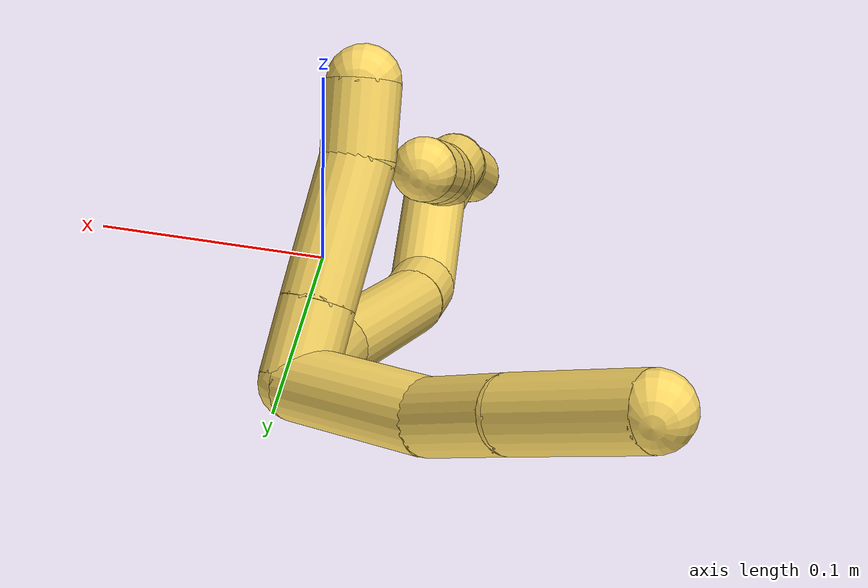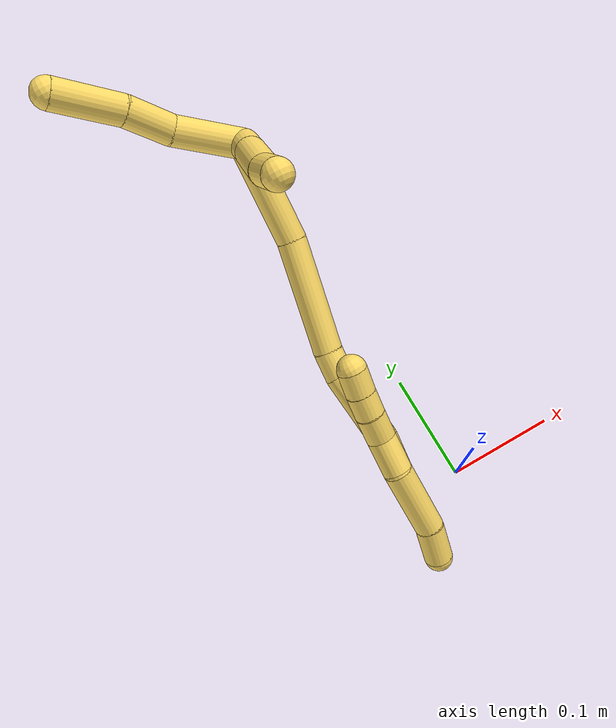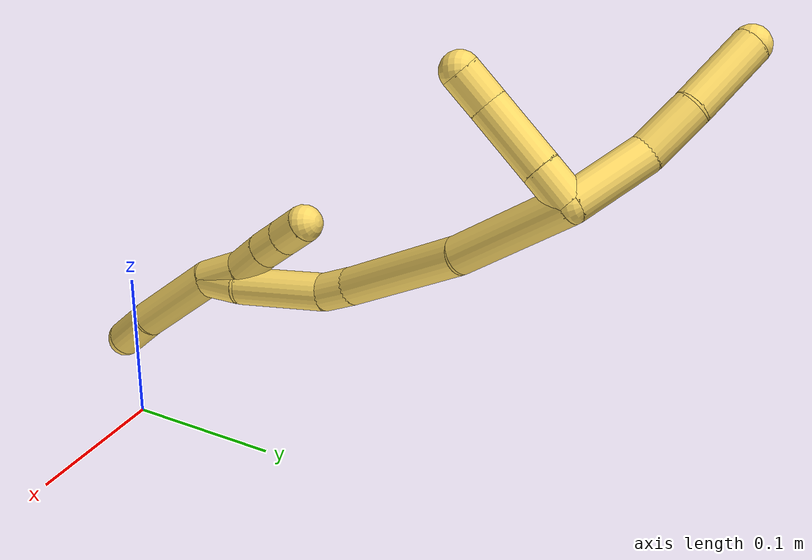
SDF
<sdf version="1.7">
 <world name="default">
  <model name="5">
   <static>0</static>
   <link name="5">
    <collision name="collision-cylinder-e_1_2_8">
     <pose>0.0166 0.016781 0.01566 -0.81994 0.626142 -0.279537</pose>
     <geometry><cylinder><radius>0.0125</radius><length>0.056655</length></cylinder></geometry>
     <surface>
      <friction><ode><mu>1.16</mu><mu2>1.16</mu2><slip1>0</slip1><slip2>0</slip2></ode></friction>
      <contact><ode><kp>1e+06</kp><kd>1</kd><max_vel>0</max_vel><min_depth>0.001</min_depth></ode></contact>
     </surface>
    </collision>
    <visual name="visual-cylinder-e_1_2_8">
     <pose>0.0166 0.016781 0.01566 -0.81994 0.626142 -0.279537</pose>
     <geometry><cylinder><radius>0.0125</radius><length>0.056655</length></cylinder></geometry>
     <material><ambient>1 0.858824 0.4 1</ambient></material>
    </visual>
    <collision name="collision-cylinder-e_2_8_9">
     <pose>0.039535 0.047328 0.043245 -0.856946 0.334706 -0.154023</pose>
     <geometry><cylinder><radius>0.0125</radius><length>0.038565</length></cylinder></geometry>
     <surface>
      <friction><ode><mu>1.16</mu><mu2>1.16</mu2><slip1>0</slip1><slip2>0</slip2></ode></friction>
      <contact><ode><kp>1e+06</kp><kd>1</kd><max_vel>0</max_vel><min_depth>0.001</min_depth></ode></contact>
     </surface>
    </collision>
    <visual name="visual-cylinder-e_2_8_9">
     <pose>0.039535 0.047328 0.043245 -0.856946 0.334706 -0.154023</pose>
     <geometry><cylinder><radius>0.0125</radius><length>0.038565</length></cylinder></geometry>
     <material><ambient>1 0.858824 0.4 1</ambient></material>
    </visual>
    <collision name="collision-cylinder-e_3_9_6">
     <pose>0.058062 0.08148 0.068808 -0.981152 0.461333 -0.249573</pose>
     <geometry><cylinder><radius>0.0125</radius><length>0.054781</length></cylinder></geometry>
     <surface>
      <friction><ode><mu>1.16</mu><mu2>1.16</mu2><slip1>0</slip1><slip2>0</slip2></ode></friction>
      <contact><ode><kp>1e+06</kp><kd>1</kd><max_vel>0</max_vel><min_depth>0.001</min_depth></ode></contact>
     </surface>
    </collision>
    <visual name="visual-cylinder-e_3_9_6">
     <pose>0.058062 0.08148 0.068808 -0.981152 0.461333 -0.249573</pose>
     <geometry><cylinder><radius>0.0125</radius><length>0.054781</length></cylinder></geometry>
     <material><ambient>1 0.858824 0.4 1</ambient></material>
    </visual>
    <collision name="collision-cylinder-e_1_2_10">
     <pose>-0.005294 0.010017 -0.006437 -2.14193 -0.418368 0.741539</pose>
     <geometry><cylinder><radius>0.0125</radius><length>0.026062</length></cylinder></geometry>
     <surface>
      <friction><ode><mu>1.16</mu><mu2>1.16</mu2><slip1>0</slip1><slip2>0</slip2></ode></friction>
      <contact><ode><kp>1e+06</kp><kd>1</kd><max_vel>0</max_vel><min_depth>0.001</min_depth></ode></contact>
     </surface>
    </collision>
    <visual name="visual-cylinder-e_1_2_10">
     <pose>-0.005294 0.010017 -0.006437 -2.14193 -0.418368 0.741539</pose>
     <geometry><cylinder><radius>0.0125</radius><length>0.026062</length></cylinder></geometry>
     <material><ambient>1 0.858824 0.4 1</ambient></material>
    </visual>
    <collision name="collision-cylinder-e_2_10_11">
     <pose>-0.020147 0.038614 -0.025072 -2.15175 -0.406169 0.728968</pose>
     <geometry><cylinder><radius>0.0125</radius><length>0.048389</length></cylinder></geometry>
     <surface>
      <friction><ode><mu>1.16</mu><mu2>1.16</mu2><slip1>0</slip1><slip2>0</slip2></ode></friction>
      <contact><ode><kp>1e+06</kp><kd>1</kd><max_vel>0</max_vel><min_depth>0.001</min_depth></ode></contact>
     </surface>
    </collision>
    <visual name="visual-cylinder-e_2_10_11">
     <pose>-0.020147 0.038614 -0.025072 -2.15175 -0.406169 0.728968</pose>
     <geometry><cylinder><radius>0.0125</radius><length>0.048389</length></cylinder></geometry>
     <material><ambient>1 0.858824 0.4 1</ambient></material>
    </visual>
    <collision name="collision-cylinder-e_3_11_5">
     <pose>-0.037004 0.066299 -0.04247 -2.08971 -0.608086 0.991108</pose>
     <geometry><cylinder><radius>0.0125</radius><length>0.025549</length></cylinder></geometry>
     <surface>
      <friction><ode><mu>1.16</mu><mu2>1.16</mu2><slip1>0</slip1><slip2>0</slip2></ode></friction>
      <contact><ode><kp>1e+06</kp><kd>1</kd><max_vel>0</max_vel><min_depth>0.001</min_depth></ode></contact>
     </surface>
    </collision>
    <visual name="visual-cylinder-e_3_11_5">
     <pose>-0.037004 0.066299 -0.04247 -2.08971 -0.608086 0.991108</pose>
     <geometry><cylinder><radius>0.0125</radius><length>0.025549</length></cylinder></geometry>
     <material><ambient>1 0.858824 0.4 1</ambient></material>
    </visual>
    <collision name="collision-cylinder-e_1_2_12">
     <pose>0.00573 -0.009404 -0.041252 2.91745 0.134605 1.07925</pose>
     <geometry><cylinder><radius>0.0125</radius><length>0.085393</length></cylinder></geometry>
     <surface>
      <friction><ode><mu>1.16</mu><mu2>1.16</mu2><slip1>0</slip1><slip2>0</slip2></ode></friction>
      <contact><ode><kp>1e+06</kp><kd>1</kd><max_vel>0</max_vel><min_depth>0.001</min_depth></ode></contact>
     </surface>
    </collision>
    <visual name="visual-cylinder-e_1_2_12">
     <pose>0.00573 -0.009404 -0.041252 2.91745 0.134605 1.07925</pose>
     <geometry><cylinder><radius>0.0125</radius><length>0.085393</length></cylinder></geometry>
     <material><ambient>1 0.858824 0.4 1</ambient></material>
    </visual>
    <collision name="collision-cylinder-e_2_12_13">
     <pose>0.022198 -0.021814 -0.129881 3.07824 0.222454 2.58875</pose>
     <geometry><cylinder><radius>0.0125</radius><length>0.097342</length></cylinder></geometry>
     <surface>
      <friction><ode><mu>1.16</mu><mu2>1.16</mu2><slip1>0</slip1><slip2>0</slip2></ode></friction>
      <contact><ode><kp>1e+06</kp><kd>1</kd><max_vel>0</max_vel><min_depth>0.001</min_depth></ode></contact>
     </surface>
    </collision>
    <visual name="visual-cylinder-e_2_12_13">
     <pose>0.022198 -0.021814 -0.129881 3.07824 0.222454 2.58875</pose>
     <geometry><cylinder><radius>0.0125</radius><length>0.097342</length></cylinder></geometry>
     <material><ambient>1 0.858824 0.4 1</ambient></material>
    </visual>
    <collision name="collision-cylinder-e_3_13_14">
     <pose>0.034041 -0.025585 -0.189466 3.07892 0.090107 1.9265</pose>
     <geometry><cylinder><radius>0.0125</radius><length>0.024566</length></cylinder></geometry>
     <surface>
      <friction><ode><mu>1.16</mu><mu2>1.16</mu2><slip1>0</slip1><slip2>0</slip2></ode></friction>
      <contact><ode><kp>1e+06</kp><kd>1</kd><max_vel>0</max_vel><min_depth>0.001</min_depth></ode></contact>
     </surface>
    </collision>
    <visual name="visual-cylinder-e_3_13_14">
     <pose>0.034041 -0.025585 -0.189466 3.07892 0.090107 1.9265</pose>
     <geometry><cylinder><radius>0.0125</radius><length>0.024566</length></cylinder></geometry>
     <material><ambient>1 0.858824 0.4 1</ambient></material>
    </visual>
    <collision name="collision-cylinder-e_4_14_15">
     <pose>0.02906 -0.022349 -0.232336 -3.01178 -0.194354 1.96545</pose>
     <geometry><cylinder><radius>0.0125</radius><length>0.063029</length></cylinder></geometry>
     <surface>
      <friction><ode><mu>1.16</mu><mu2>1.16</mu2><slip1>0</slip1><slip2>0</slip2></ode></friction>
      <contact><ode><kp>1e+06</kp><kd>1</kd><max_vel>0</max_vel><min_depth>0.001</min_depth></ode></contact>
     </surface>
    </collision>
    <visual name="visual-cylinder-e_4_14_15">
     <pose>0.02906 -0.022349 -0.232336 -3.01178 -0.194354 1.96545</pose>
     <geometry><cylinder><radius>0.0125</radius><length>0.063029</length></cylinder></geometry>
     <material><ambient>1 0.858824 0.4 1</ambient></material>
    </visual>
    <collision name="collision-cylinder-e_5_15_1">
     <pose>0.022553 -0.014464 -0.277309 -2.87675 -0.028298 0.211665</pose>
     <geometry><cylinder><radius>0.0125</radius><length>0.02967</length></cylinder></geometry>
     <surface>
      <friction><ode><mu>1.16</mu><mu2>1.16</mu2><slip1>0</slip1><slip2>0</slip2></ode></friction>
      <contact><ode><kp>1e+06</kp><kd>1</kd><max_vel>0</max_vel><min_depth>0.001</min_depth></ode></contact>
     </surface>
    </collision>
    <visual name="visual-cylinder-e_5_15_1">
     <pose>0.022553 -0.014464 -0.277309 -2.87675 -0.028298 0.211665</pose>
     <geometry><cylinder><radius>0.0125</radius><length>0.02967</length></cylinder></geometry>
     <material><ambient>1 0.858824 0.4 1</ambient></material>
    </visual>
    <collision name="collision-cylinder-e_1_1_16">
     <pose>0.020818 -0.008994 -0.27567 -0.099276 -0.081922 0.004072</pose>
     <geometry><cylinder><radius>0.0125</radius><length>0.032167</length></cylinder></geometry>
     <surface>
      <friction><ode><mu>1.16</mu><mu2>1.16</mu2><slip1>0</slip1><slip2>0</slip2></ode></friction>
      <contact><ode><kp>1e+06</kp><kd>1</kd><max_vel>0</max_vel><min_depth>0.001</min_depth></ode></contact>
     </surface>
    </collision>
    <visual name="visual-cylinder-e_1_1_16">
     <pose>0.020818 -0.008994 -0.27567 -0.099276 -0.081922 0.004072</pose>
     <geometry><cylinder><radius>0.0125</radius><length>0.032167</length></cylinder></geometry>
     <material><ambient>1 0.858824 0.4 1</ambient></material>
    </visual>
    <collision name="collision-cylinder-e_2_16_17">
     <pose>0.0169 -0.002999 -0.248272 -0.367423 -0.20901 0.038972</pose>
     <geometry><cylinder><radius>0.0125</radius><length>0.025077</length></cylinder></geometry>
     <surface>
      <friction><ode><mu>1.16</mu><mu2>1.16</mu2><slip1>0</slip1><slip2>0</slip2></ode></friction>
      <contact><ode><kp>1e+06</kp><kd>1</kd><max_vel>0</max_vel><min_depth>0.001</min_depth></ode></contact>
     </surface>
    </collision>
    <visual name="visual-cylinder-e_2_16_17">
     <pose>0.0169 -0.002999 -0.248272 -0.367423 -0.20901 0.038972</pose>
     <geometry><cylinder><radius>0.0125</radius><length>0.025077</length></cylinder></geometry>
     <material><ambient>1 0.858824 0.4 1</ambient></material>
    </visual>
    <collision name="collision-cylinder-e_3_17_18">
     <pose>0.012133 0.004307 -0.226979 -0.286474 -0.207888 0.030089</pose>
     <geometry><cylinder><radius>0.0125</radius><length>0.020982</length></cylinder></geometry>
     <surface>
      <friction><ode><mu>1.16</mu><mu2>1.16</mu2><slip1>0</slip1><slip2>0</slip2></ode></friction>
      <contact><ode><kp>1e+06</kp><kd>1</kd><max_vel>0</max_vel><min_depth>0.001</min_depth></ode></contact>
     </surface>
    </collision>
    <visual name="visual-cylinder-e_3_17_18">
     <pose>0.012133 0.004307 -0.226979 -0.286474 -0.207888 0.030089</pose>
     <geometry><cylinder><radius>0.0125</radius><length>0.020982</length></cylinder></geometry>
     <material><ambient>1 0.858824 0.4 1</ambient></material>
    </visual>
    <collision name="collision-cylinder-e_4_18_4">
     <pose>0.007301 0.009956 -0.206941 -0.263414 -0.247501 0.032953</pose>
     <geometry><cylinder><radius>0.0125</radius><length>0.021774</length></cylinder></geometry>
     <surface>
      <friction><ode><mu>1.16</mu><mu2>1.16</mu2><slip1>0</slip1><slip2>0</slip2></ode></friction>
      <contact><ode><kp>1e+06</kp><kd>1</kd><max_vel>0</max_vel><min_depth>0.001</min_depth></ode></contact>
     </surface>
    </collision>
    <visual name="visual-cylinder-e_4_18_4">
     <pose>0.007301 0.009956 -0.206941 -0.263414 -0.247501 0.032953</pose>
     <geometry><cylinder><radius>0.0125</radius><length>0.021774</length></cylinder></geometry>
     <material><ambient>1 0.858824 0.4 1</ambient></material>
    </visual>
    <collision name="collision-cylinder-e_1_1_19">
     <pose>0.026378 -0.021268 -0.322028 2.80366 0.130931 0.7338</pose>
     <geometry><cylinder><radius>0.0125</radius><length>0.065016</length></cylinder></geometry>
     <surface>
      <friction><ode><mu>1.16</mu><mu2>1.16</mu2><slip1>0</slip1><slip2>0</slip2></ode></friction>
      <contact><ode><kp>1e+06</kp><kd>1</kd><max_vel>0</max_vel><min_depth>0.001</min_depth></ode></contact>
     </surface>
    </collision>
    <visual name="visual-cylinder-e_1_1_19">
     <pose>0.026378 -0.021268 -0.322028 2.80366 0.130931 0.7338</pose>
     <geometry><cylinder><radius>0.0125</radius><length>0.065016</length></cylinder></geometry>
     <material><ambient>1 0.858824 0.4 1</ambient></material>
    </visual>
    <collision name="collision-cylinder-e_2_19_3">
     <pose>0.035926 -0.036793 -0.368386 2.84702 0.308046 1.6162</pose>
     <geometry><cylinder><radius>0.0125</radius><length>0.034984</length></cylinder></geometry>
     <surface>
      <friction><ode><mu>1.16</mu><mu2>1.16</mu2><slip1>0</slip1><slip2>0</slip2></ode></friction>
      <contact><ode><kp>1e+06</kp><kd>1</kd><max_vel>0</max_vel><min_depth>0.001</min_depth></ode></contact>
     </surface>
    </collision>
    <visual name="visual-cylinder-e_2_19_3">
     <pose>0.035926 -0.036793 -0.368386 2.84702 0.308046 1.6162</pose>
     <geometry><cylinder><radius>0.0125</radius><length>0.034984</length></cylinder></geometry>
     <material><ambient>1 0.858824 0.4 1</ambient></material>
    </visual>
    <collision name="collision-sphere-3">
     <pose>0.041229 -0.041632 -0.384336 0 -0 0</pose>
     <geometry><sphere><radius>0.0125</radius></sphere></geometry>
     <surface>
      <friction><ode><mu>1.16</mu><mu2>1.16</mu2><slip1>0</slip1><slip2>0</slip2></ode></friction>
      <contact><ode><kp>1e+06</kp><kd>1</kd><max_vel>0</max_vel><min_depth>0.001</min_depth></ode></contact>
     </surface>
    </collision>
    <visual name="visual-sphere-3">
     <pose>0.041229 -0.041632 -0.384336 0 -0 0</pose>
     <geometry><sphere><radius>0.0125</radius></sphere></geometry>
     <material><ambient>1 0.858824 0.4 1</ambient></material>
    </visual>
    <collision name="collision-sphere-19">
     <pose>0.030622 -0.031954 -0.352435 0 -0 0</pose>
     <geometry><sphere><radius>0.0125</radius></sphere></geometry>
     <surface>
      <friction><ode><mu>1.16</mu><mu2>1.16</mu2><slip1>0</slip1><slip2>0</slip2></ode></friction>
      <contact><ode><kp>1e+06</kp><kd>1</kd><max_vel>0</max_vel><min_depth>0.001</min_depth></ode></contact>
     </surface>
    </collision>
    <visual name="visual-sphere-19">
     <pose>0.030622 -0.031954 -0.352435 0 -0 0</pose>
     <geometry><sphere><radius>0.0125</radius></sphere></geometry>
     <material><ambient>1 0.858824 0.4 1</ambient></material>
    </visual>
    <collision name="collision-sphere-11">
     <pose>-0.029706 0.057194 -0.03727 0 -0 0</pose>
     <geometry><sphere><radius>0.0125</radius></sphere></geometry>
     <surface>
      <friction><ode><mu>1.16</mu><mu2>1.16</mu2><slip1>0</slip1><slip2>0</slip2></ode></friction>
      <contact><ode><kp>1e+06</kp><kd>1</kd><max_vel>0</max_vel><min_depth>0.001</min_depth></ode></contact>
     </surface>
    </collision>
    <visual name="visual-sphere-11">
     <pose>-0.029706 0.057194 -0.03727 0 -0 0</pose>
     <geometry><sphere><radius>0.0125</radius></sphere></geometry>
     <material><ambient>1 0.858824 0.4 1</ambient></material>
    </visual>
    <collision name="collision-sphere-10">
     <pose>-0.010588 0.020035 -0.012874 0 -0 0</pose>
     <geometry><sphere><radius>0.0125</radius></sphere></geometry>
     <surface>
      <friction><ode><mu>1.16</mu><mu2>1.16</mu2><slip1>0</slip1><slip2>0</slip2></ode></friction>
      <contact><ode><kp>1e+06</kp><kd>1</kd><max_vel>0</max_vel><min_depth>0.001</min_depth></ode></contact>
     </surface>
    </collision>
    <visual name="visual-sphere-10">
     <pose>-0.010588 0.020035 -0.012874 0 -0 0</pose>
     <geometry><sphere><radius>0.0125</radius></sphere></geometry>
     <material><ambient>1 0.858824 0.4 1</ambient></material>
    </visual>
    <collision name="collision-sphere-6">
     <pose>0.070254 0.101865 0.082447 0 -0 0</pose>
     <geometry><sphere><radius>0.0125</radius></sphere></geometry>
     <surface>
      <friction><ode><mu>1.16</mu><mu2>1.16</mu2><slip1>0</slip1><slip2>0</slip2></ode></friction>
      <contact><ode><kp>1e+06</kp><kd>1</kd><max_vel>0</max_vel><min_depth>0.001</min_depth></ode></contact>
     </surface>
    </collision>
    <visual name="visual-sphere-6">
     <pose>0.070254 0.101865 0.082447 0 -0 0</pose>
     <geometry><sphere><radius>0.0125</radius></sphere></geometry>
     <material><ambient>1 0.858824 0.4 1</ambient></material>
    </visual>
    <collision name="collision-sphere-9">
     <pose>0.045869 0.061094 0.05517 0 -0 0</pose>
     <geometry><sphere><radius>0.0125</radius></sphere></geometry>
     <surface>
      <friction><ode><mu>1.16</mu><mu2>1.16</mu2><slip1>0</slip1><slip2>0</slip2></ode></friction>
      <contact><ode><kp>1e+06</kp><kd>1</kd><max_vel>0</max_vel><min_depth>0.001</min_depth></ode></contact>
     </surface>
    </collision>
    <visual name="visual-sphere-9">
     <pose>0.045869 0.061094 0.05517 0 -0 0</pose>
     <geometry><sphere><radius>0.0125</radius></sphere></geometry>
     <material><ambient>1 0.858824 0.4 1</ambient></material>
    </visual>
    <collision name="collision-sphere-2">
     <geometry><sphere><radius>0.0125</radius></sphere></geometry>
     <surface>
      <friction><ode><mu>1.16</mu><mu2>1.16</mu2><slip1>0</slip1><slip2>0</slip2></ode></friction>
      <contact><ode><kp>1e+06</kp><kd>1</kd><max_vel>0</max_vel><min_depth>0.001</min_depth></ode></contact>
     </surface>
    </collision>
    <visual name="visual-sphere-2">
     <geometry><sphere><radius>0.0125</radius></sphere></geometry>
     <material><ambient>1 0.858824 0.4 1</ambient></material>
    </visual>
    <collision name="collision-sphere-8">
     <pose>0.033201 0.033563 0.031321 0 -0 0</pose>
     <geometry><sphere><radius>0.0125</radius></sphere></geometry>
     <surface>
      <friction><ode><mu>1.16</mu><mu2>1.16</mu2><slip1>0</slip1><slip2>0</slip2></ode></friction>
      <contact><ode><kp>1e+06</kp><kd>1</kd><max_vel>0</max_vel><min_depth>0.001</min_depth></ode></contact>
     </surface>
    </collision>
    <visual name="visual-sphere-8">
     <pose>0.033201 0.033563 0.031321 0 -0 0</pose>
     <geometry><sphere><radius>0.0125</radius></sphere></geometry>
     <material><ambient>1 0.858824 0.4 1</ambient></material>
    </visual>
    <collision name="collision-sphere-5">
     <pose>-0.044302 0.075403 -0.047669 0 -0 0</pose>
     <geometry><sphere><radius>0.0125</radius></sphere></geometry>
     <surface>
      <friction><ode><mu>1.16</mu><mu2>1.16</mu2><slip1>0</slip1><slip2>0</slip2></ode></friction>
      <contact><ode><kp>1e+06</kp><kd>1</kd><max_vel>0</max_vel><min_depth>0.001</min_depth></ode></contact>
     </surface>
    </collision>
    <visual name="visual-sphere-5">
     <pose>-0.044302 0.075403 -0.047669 0 -0 0</pose>
     <geometry><sphere><radius>0.0125</radius></sphere></geometry>
     <material><ambient>1 0.858824 0.4 1</ambient></material>
    </visual>
    <collision name="collision-sphere-12">
     <pose>0.01146 -0.018809 -0.082504 0 -0 0</pose>
     <geometry><sphere><radius>0.0125</radius></sphere></geometry>
     <surface>
      <friction><ode><mu>1.16</mu><mu2>1.16</mu2><slip1>0</slip1><slip2>0</slip2></ode></friction>
      <contact><ode><kp>1e+06</kp><kd>1</kd><max_vel>0</max_vel><min_depth>0.001</min_depth></ode></contact>
     </surface>
    </collision>
    <visual name="visual-sphere-12">
     <pose>0.01146 -0.018809 -0.082504 0 -0 0</pose>
     <geometry><sphere><radius>0.0125</radius></sphere></geometry>
     <material><ambient>1 0.858824 0.4 1</ambient></material>
    </visual>
    <collision name="collision-sphere-13">
     <pose>0.032936 -0.024819 -0.177257 0 -0 0</pose>
     <geometry><sphere><radius>0.0125</radius></sphere></geometry>
     <surface>
      <friction><ode><mu>1.16</mu><mu2>1.16</mu2><slip1>0</slip1><slip2>0</slip2></ode></friction>
      <contact><ode><kp>1e+06</kp><kd>1</kd><max_vel>0</max_vel><min_depth>0.001</min_depth></ode></contact>
     </surface>
    </collision>
    <visual name="visual-sphere-13">
     <pose>0.032936 -0.024819 -0.177257 0 -0 0</pose>
     <geometry><sphere><radius>0.0125</radius></sphere></geometry>
     <material><ambient>1 0.858824 0.4 1</ambient></material>
    </visual>
    <collision name="collision-sphere-14">
     <pose>0.035146 -0.026352 -0.201675 0 -0 0</pose>
     <geometry><sphere><radius>0.0125</radius></sphere></geometry>
     <surface>
      <friction><ode><mu>1.16</mu><mu2>1.16</mu2><slip1>0</slip1><slip2>0</slip2></ode></friction>
      <contact><ode><kp>1e+06</kp><kd>1</kd><max_vel>0</max_vel><min_depth>0.001</min_depth></ode></contact>
     </surface>
    </collision>
    <visual name="visual-sphere-14">
     <pose>0.035146 -0.026352 -0.201675 0 -0 0</pose>
     <geometry><sphere><radius>0.0125</radius></sphere></geometry>
     <material><ambient>1 0.858824 0.4 1</ambient></material>
    </visual>
    <collision name="collision-sphere-15">
     <pose>0.022973 -0.018346 -0.262997 0 -0 0</pose>
     <geometry><sphere><radius>0.0125</radius></sphere></geometry>
     <surface>
      <friction><ode><mu>1.16</mu><mu2>1.16</mu2><slip1>0</slip1><slip2>0</slip2></ode></friction>
      <contact><ode><kp>1e+06</kp><kd>1</kd><max_vel>0</max_vel><min_depth>0.001</min_depth></ode></contact>
     </surface>
    </collision>
    <visual name="visual-sphere-15">
     <pose>0.022973 -0.018346 -0.262997 0 -0 0</pose>
     <geometry><sphere><radius>0.0125</radius></sphere></geometry>
     <material><ambient>1 0.858824 0.4 1</ambient></material>
    </visual>
    <collision name="collision-sphere-1">
     <pose>0.022134 -0.010583 -0.291621 0 -0 0</pose>
     <geometry><sphere><radius>0.0125</radius></sphere></geometry>
     <surface>
      <friction><ode><mu>1.16</mu><mu2>1.16</mu2><slip1>0</slip1><slip2>0</slip2></ode></friction>
      <contact><ode><kp>1e+06</kp><kd>1</kd><max_vel>0</max_vel><min_depth>0.001</min_depth></ode></contact>
     </surface>
    </collision>
    <visual name="visual-sphere-1">
     <pose>0.022134 -0.010583 -0.291621 0 -0 0</pose>
     <geometry><sphere><radius>0.0125</radius></sphere></geometry>
     <material><ambient>1 0.858824 0.4 1</ambient></material>
    </visual>
    <collision name="collision-sphere-18">
     <pose>0.009968 0.007208 -0.217132 0 -0 0</pose>
     <geometry><sphere><radius>0.0125</radius></sphere></geometry>
     <surface>
      <friction><ode><mu>1.16</mu><mu2>1.16</mu2><slip1>0</slip1><slip2>0</slip2></ode></friction>
      <contact><ode><kp>1e+06</kp><kd>1</kd><max_vel>0</max_vel><min_depth>0.001</min_depth></ode></contact>
     </surface>
    </collision>
    <visual name="visual-sphere-18">
     <pose>0.009968 0.007208 -0.217132 0 -0 0</pose>
     <geometry><sphere><radius>0.0125</radius></sphere></geometry>
     <material><ambient>1 0.858824 0.4 1</ambient></material>
    </visual>
    <collision name="collision-sphere-16">
     <pose>0.019501 -0.007405 -0.259719 0 -0 0</pose>
     <geometry><sphere><radius>0.0125</radius></sphere></geometry>
     <surface>
      <friction><ode><mu>1.16</mu><mu2>1.16</mu2><slip1>0</slip1><slip2>0</slip2></ode></friction>
      <contact><ode><kp>1e+06</kp><kd>1</kd><max_vel>0</max_vel><min_depth>0.001</min_depth></ode></contact>
     </surface>
    </collision>
    <visual name="visual-sphere-16">
     <pose>0.019501 -0.007405 -0.259719 0 -0 0</pose>
     <geometry><sphere><radius>0.0125</radius></sphere></geometry>
     <material><ambient>1 0.858824 0.4 1</ambient></material>
    </visual>
    <collision name="collision-sphere-17">
     <pose>0.014298 0.001407 -0.236825 0 -0 0</pose>
     <geometry><sphere><radius>0.0125</radius></sphere></geometry>
     <surface>
      <friction><ode><mu>1.16</mu><mu2>1.16</mu2><slip1>0</slip1><slip2>0</slip2></ode></friction>
      <contact><ode><kp>1e+06</kp><kd>1</kd><max_vel>0</max_vel><min_depth>0.001</min_depth></ode></contact>
     </surface>
    </collision>
    <visual name="visual-sphere-17">
     <pose>0.014298 0.001407 -0.236825 0 -0 0</pose>
     <geometry><sphere><radius>0.0125</radius></sphere></geometry>
     <material><ambient>1 0.858824 0.4 1</ambient></material>
    </visual>
    <collision name="collision-sphere-4">
     <pose>0.004633 0.012705 -0.19675 0 -0 0</pose>
     <geometry><sphere><radius>0.0125</radius></sphere></geometry>
     <surface>
      <friction><ode><mu>1.16</mu><mu2>1.16</mu2><slip1>0</slip1><slip2>0</slip2></ode></friction>
      <contact><ode><kp>1e+06</kp><kd>1</kd><max_vel>0</max_vel><min_depth>0.001</min_depth></ode></contact>
     </surface>
    </collision>
    <visual name="visual-sphere-4">
     <pose>0.004633 0.012705 -0.19675 0 -0 0</pose>
     <geometry><sphere><radius>0.0125</radius></sphere></geometry>
     <material><ambient>1 0.858824 0.4 1</ambient></material>
    </visual>
    <inertial>
     <pose>0.018738 0.003924 -0.130693 0 -0 0</pose>
     <mass>0.75</mass>
     <inertia>
      <ixx>0.000165</ixx>
      <ixy>0</ixy>
      <ixz>0</ixz>
      <iyy>0.00022</iyy>
      <iyz>0</iyz>
      <izz>-7.4e-05</izz>
     </inertia>
    </inertial>
   </link>
   <pose>-0.05088 0.282794 0.201678 1.1379 0.566013 2.91259</pose>
  </model>
 </world>
</sdf>
